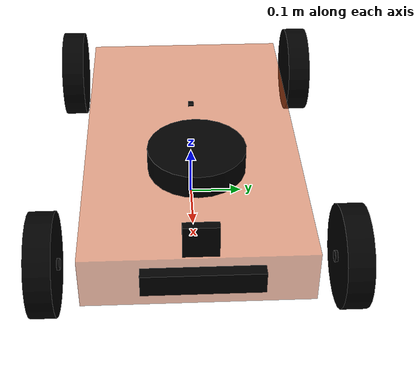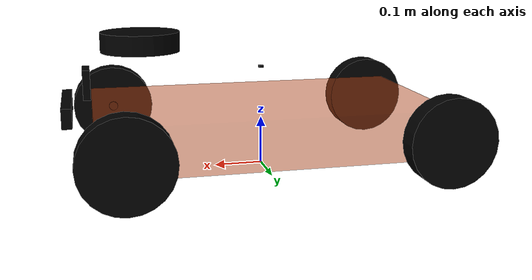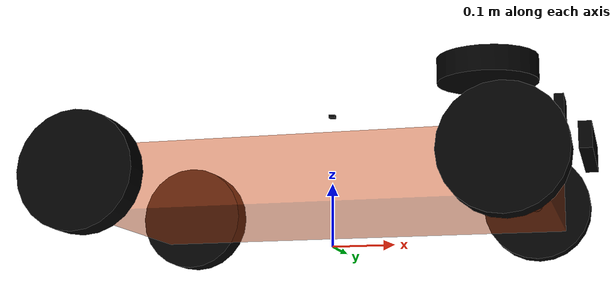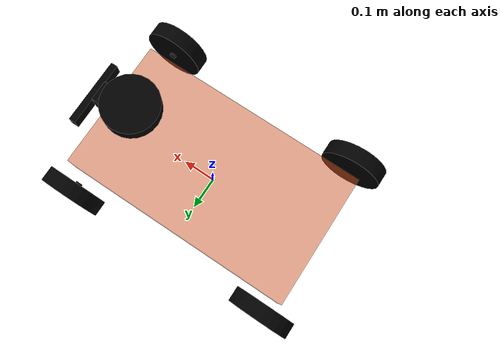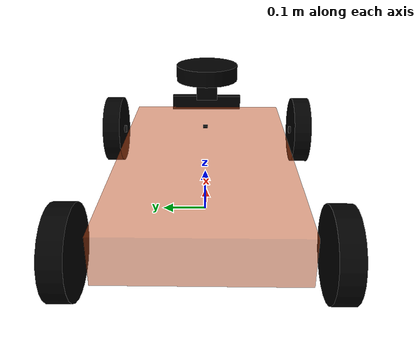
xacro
<?xml version="1.0" encoding="utf-8"?>

<robot name="racebot" xmlns:xacro="http://www.ros.org/wiki/xacro">

    <xacro:include filename="$(find akmbot_description)/urdf/macros.xacro" />

    <link name="base_footprint">
    </link>

    <link name="base_link">
        <visual>
            <geometry>
                <box size="0.70 0.4 0.1"/>

            </geometry>

            <origin xyz="0 0 0" rpy="0 0 0" />
            <material name="yellow">
                <color rgba="0.8 0.3 0.1 0.5" />
            </material>
        </visual>
        <collision>
            <geometry>
                <box size="0.70 0.4 0.1" />
            </geometry>
            <origin xyz="0.0 0.0 0.0" rpy="0.0 0.0 0.0" />
        </collision>

    </link>

    <joint name="base_link_joint" type="fixed">
        <parent link="base_footprint" />
        <child link="base_link"/>
        <origin xyz="0 0 0.09" rpy="0 0 0" />
    </joint>

    <link name="base_inertia">
    <inertial>
            <origin xyz="0 0 0" />
            <mass value="4" />
            <inertia ixx="0.05667" ixy="0.0" ixz="0.0" iyy="0.16667" iyz="0.0" izz="0.21667" />
        </inertial>
    </link>

    <joint name="chassis_inertia_joint" type="fixed">
    	<origin xyz="0 0 0" rpy="0 0 0" />
    	<parent link="base_link" />
    	<child link="base_inertia" />
    </joint>

    <link name="left_steering_hinge">
        <visual>
            <geometry>
                <cylinder radius="0.01" length="0.005" />

            </geometry>
            <origin xyz="0 0 0" rpy="1.57 0 0" />
            <material name="black">
                <color rgba="0.0 0.0 0.0 1.0" />
            </material>
        </visual>
        <collision>
            <geometry>
                <cylinder radius="0.01" length="0.005" />

            </geometry>
            <origin xyz="0.0 0.0 0.0" rpy="1.57 0.0 0.0" />
        </collision>
        <inertial>
            <origin xyz="0 0 0" />
            <mass value="0.5" />
            <inertia ixx="1.35E-05" ixy="0" ixz="0" iyy="1.35E-05" iyz="0" izz="2.5E-05" />
        </inertial>
    </link>

    <joint name="left_steering_hinge_joint" type="revolute">
        <parent link="base_link" />
        <child link="left_steering_hinge" />
        <origin xyz="0.30 0.235 0" />
        <axis xyz="0 0 1" />
        <limit lower="-0.3576" upper="0.3576" effort="5.0" velocity="1000.0"/>
    </joint>
    <xacro:steering_hinge_transmission name="left_steering_hinge" />

    <link name="left_front_wheel">
        <visual>
            <geometry>
                <cylinder radius="0.09" length="0.045" />
            </geometry>
            <origin xyz="0 0 0" rpy="1.57 0 0" />
            <material name="black">
                <color rgba="0.0 0.0 0.0 1.0" />
            </material>
        </visual>
        <collision>
            <geometry>
                <cylinder radius="0.09" length="0.045" />
            </geometry>
            <origin xyz="0.0 0.0 0.0" rpy="1.57 0.0 0.0" />
        </collision>
        <inertial>
            <origin xyz="0 0 0" />
            <mass value="2.0" />
            <inertia ixx="0.0165375" ixy="0.0" ixz="0.0" iyy="0.0165375" iyz="0.0" izz="0.0324" />
        </inertial>
    </link>

    <joint name="left_front_wheel_joint" type="continuous">
        <parent link="left_steering_hinge" />
        <child link="left_front_wheel" />
        <origin xyz="0 0.025 0" />
        <axis xyz="0 1 0" />
        <limit effort="10" velocity="1000" />
    </joint>
    <xacro:wheel_transmission name="left_front_wheel" />

<link name="right_steering_hinge">
        <visual>
            <geometry>
                 <cylinder radius="0.01" length="0.005" />
            </geometry>
            <origin xyz="0 0 0" rpy="1.57 0 0" />
            <material name="black">
                <color rgba="0.0 0.0 0.0 1.0" />
            </material>
        </visual>
        <collision>
            <geometry>
                <cylinder radius="0.01" length="0.005" />
            </geometry>
            <origin xyz="0.0 0.0 0.0" rpy="1.57 0.0 0.0" />
        </collision>
        <inertial>
            <origin xyz="0 0 0" />
            <mass value="0.5" />
            <inertia ixx="1.35E-05" ixy="0" ixz="0" iyy="1.35E-05" iyz="0" izz="2.5E-05" />
        </inertial>
    </link>

    <joint name="right_steering_hinge_joint" type="revolute">
        <parent link="base_link" />
        <child link="right_steering_hinge" />
        <origin xyz="0.30 -0.235 0" />
        <axis xyz="0 0 1" />
        <limit lower="-0.3576" upper="0.3576" effort="5.0" velocity="1000.0"/>
    </joint>
    <xacro:steering_hinge_transmission name="right_steering_hinge" />

     <link name="right_front_wheel">
        <visual>
            <geometry>
                <cylinder radius="0.09" length="0.045" />
            </geometry>
            <origin xyz="0 0 0" rpy="1.57 0 0" />
            <material name="black">
                <color rgba="0.0 0.0 0.0 1.0" />
            </material>
        </visual>
        <collision>
            <geometry>
                <cylinder radius="0.09" length="0.045" />
            </geometry>
            <origin xyz="0.0 0.0 0.0" rpy="1.57 0.0 0.0" />
        </collision>
        <inertial>
            <origin xyz="0 0 0" />
            <mass value="2.0" />
            <inertia ixx="0.0165375" ixy="0.0" ixz="0.0" iyy="0.0165375" iyz="0.0" izz="0.0324" />
        </inertial>
    </link>

    <joint name="right_front_wheel_joint" type="continuous">
        <parent link="right_steering_hinge" />
        <child link="right_front_wheel" />
        <origin xyz="0 -0.025 0" />
        <axis xyz="0 1 0" />
        <limit effort="10" velocity="1000" />
    </joint>
    <xacro:wheel_transmission name="right_front_wheel" />

    <link name="left_rear_wheel">
        <visual>
            <geometry>
                <cylinder radius="0.09" length="0.045" />
            </geometry>
            <origin xyz="0 0 0" rpy="1.57 0 0" />
            <material name="black">
                <color rgba="0.0 0.0 0.0 1.0" />
            </material>
        </visual>
        <collision>
            <geometry>
                <cylinder radius="0.09" length="0.045" />
            </geometry>
            <origin xyz="0.0 0.0 0.0" rpy="1.57 0.0 0.0" />
        </collision>
        <inertial>
            <origin xyz="0 0 0" />
            <mass value="2.0" />
            <inertia ixx="0.0165375" ixy="0.0" ixz="0.0" iyy="0.0165375" iyz="0.0" izz="0.0324" />
        </inertial>
    </link>

    <joint name="left_rear_wheel_joint" type="continuous">
        <parent link="base_link" />
        <child link="left_rear_wheel" />
        <origin xyz="-0.32 0.245 0" />
        <axis xyz="0 1 0" />
        <limit effort="10" velocity="1000" />
    </joint>
    <xacro:wheel_transmission name="left_rear_wheel" />

    <link name="right_rear_wheel">
        <visual>
            <geometry>
                <cylinder radius="0.09" length="0.045" />
            </geometry>
            <origin xyz="0 0 0" rpy="1.57 0 0" />
            <material name="black">
                <color rgba="0.0 0.0 0.0 1.0" />
            </material>
        </visual>
        <collision>
            <geometry>
                <cylinder radius="0.09" length="0.045" />
            </geometry>
            <origin xyz="0.0 0.0 0.0" rpy="1.57 0.0 0.0" />
        </collision>
        <inertial>
            <origin xyz="0 0 0" />
            <mass value="2.0" />
            <inertia ixx="0.0165375" ixy="0.0" ixz="0.0" iyy="0.0165375" iyz="0.0" izz="0.0324" />
        </inertial>
    </link>

    <joint name="right_rear_wheel_joint" type="continuous">
        <parent link="base_link" />
        <child link="right_rear_wheel" />
        <origin xyz="-0.32 -0.245 0" />
        <axis xyz="0 1 0" />
        <limit effort="10" velocity="1000" />
    </joint>
    <xacro:wheel_transmission name="right_rear_wheel" />

    <link name="camera">
        <visual>
            <geometry>
                <box size="0.015 0.06 0.06"/>
            </geometry>
            <origin xyz="0 0 0" rpy="0 0 0" />
            <material name="black">
                <color rgba="0.0 0.0 0.0 1.0" />
            </material>
        </visual>
        <collision>
            <geometry>
                <box size="0.015 0.06 0.06"/>
            </geometry>
            <origin xyz="0.0 0.0 0.0" rpy="0.0 0.0 0.0" />
        </collision>
        <inertial>
            <origin xyz="0 0 0" />
            <mass value="0.05" />
            <inertia ixx="0.0012" ixy="0.0" ixz="0.0" iyy="0.0006375" iyz="0.0" izz="0.0006375" />
        </inertial>
    </link>

    <joint name="camera_joint" type="fixed">
        <parent link="base_link" />
        <child link="camera" />
        <origin xyz="0.36 0.0022137 0.1" />
        <axis xyz="0 0 1" />
    </joint>

    <link name="real_sense">
        <visual>
            <geometry>
                <box size="0.02 0.2 0.04"/>
            </geometry>
            <origin xyz="0 0 0" rpy="0 0 0" />
            <material name="black">
                <color rgba="0.0 0.0 0.0 1.0" />
            </material>
        </visual>
        <collision>
            <geometry>
                <box size="0.02 0.2 0.04"/>
            </geometry>
            <origin xyz="0.0 0.0 0.0" rpy="0.0 0.0 0.0" />
        </collision>
        <inertial>
            <origin xyz="0 0 0" />
            <mass value="0.05" />
            <inertia ixx="0.0069333" ixy="0.0" ixz="0.0" iyy="0.0003333" iyz="0.0" izz="0.0067333" />
        </inertial>
    </link>

    <joint name="realsense_joint" type="fixed">
        <parent link="base_link" />
        <child link="real_sense" />
        <origin xyz="0.4 0.0038046 0.05" />
        <axis xyz="0 0 1" />
    </joint>

    <link name="lidar">
        <visual>
            <geometry>
                <cylinder radius="0.08" length="0.04" />
            </geometry>
            <origin xyz="0 0 0" rpy="0 0 0" />
            <material name="black">
                <color rgba="0.0 0.0 0.0 1.0" />
            </material>
        </visual>
        <collision>
            <geometry>
                <cylinder radius="0.08" length="0.04" />
            </geometry>
            <origin xyz="0.0 0.0 0.0" rpy="0.0 0.0 0.0" />
        </collision>
        <inertial>
            <origin xyz="0 0 0" />
            <mass value="0.1" />
            <inertia ixx="0.0034667" ixy="0.0" ixz="0.0" iyy="0.0034667" iyz="0.0" izz="0.0064" />
        </inertial>
    </link>

    <joint name="lidar_joint" type="fixed">
        <parent link="base_link" />
        <child link="lidar" />
        <origin xyz="0.25 0 0.18" />
        <axis xyz="0 0 1" />
    </joint>

    <link name="imu">
        <visual>
            <geometry>
                <box size="0.01 0.01 0.005"/>
            </geometry>
            <origin xyz="0 0 0" rpy="0 0 0" />
            <material name="black">
                <color rgba="0.0 0.0 0.0 1.0" />
            </material>
        </visual>
        <collision>
            <geometry>
                <box size="0.01 0.01 0.005"/>
            </geometry>
            <origin xyz="0.0 0.0 0.0" rpy="0.0 0.0 0.0" />
        </collision>
        <inertial>
            <origin xyz="0 0 0" />
            <mass value="0.05" />
            <inertia ixx="6.64E-04" ixy="0" ixz="0" iyy="6.64E-04" iyz="0" izz="1.02E-03" />
        </inertial>
    </link>

    <joint name="imu_joint" type="fixed">
        <parent link="base_link" />
        <child link="imu" />
        <origin xyz="0 0 0.12" />
        <axis xyz="0 0 1" />
    </joint>

    <xacro:include filename="$(find akmbot_description)/urdf/akmbot.gazebo" />

</robot>
